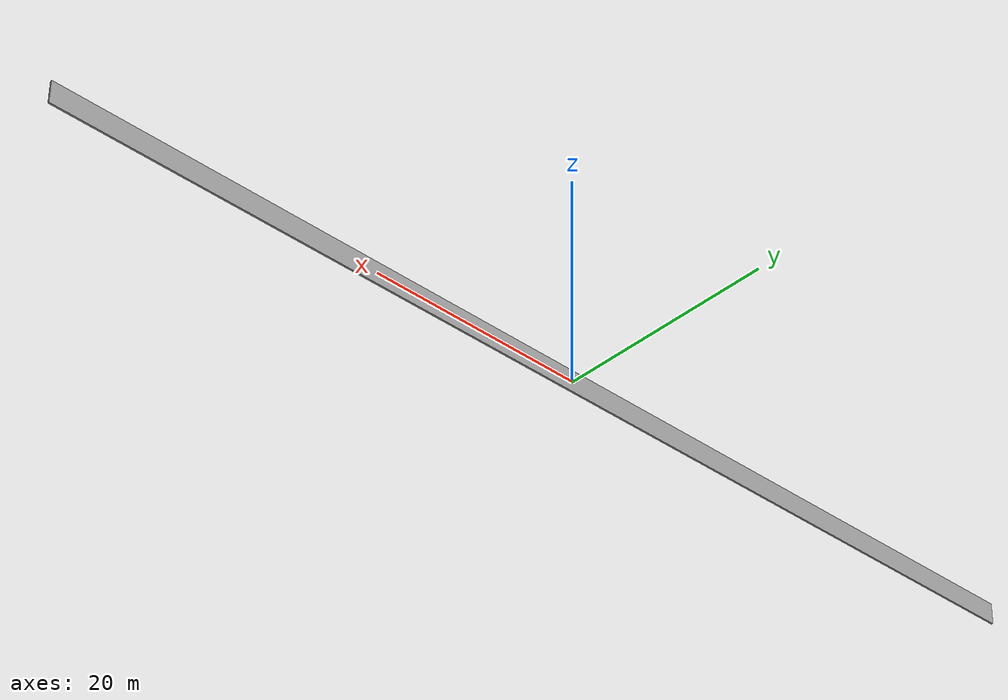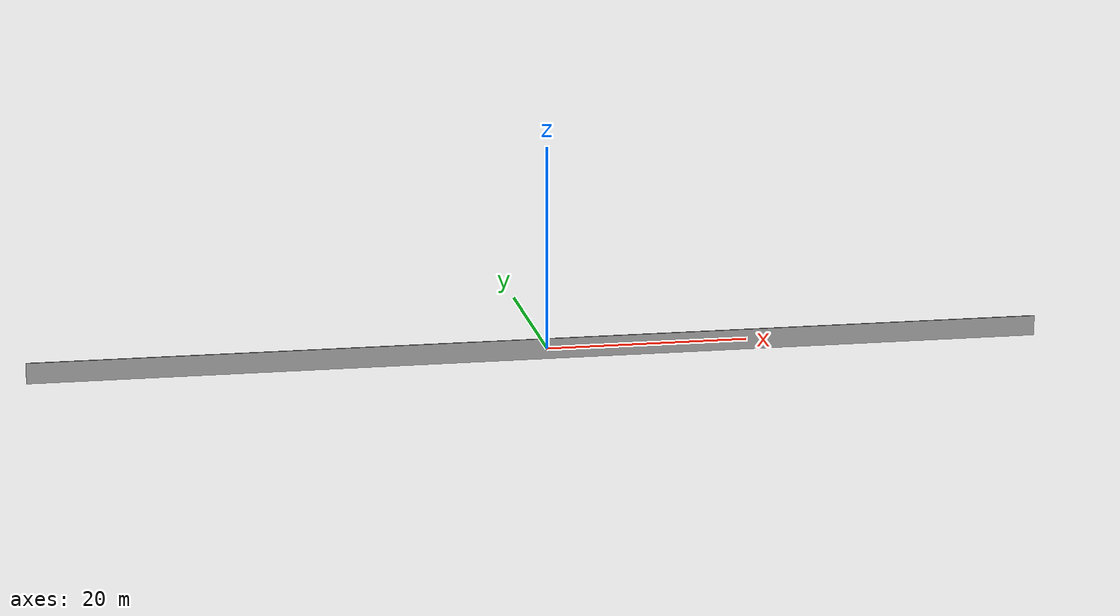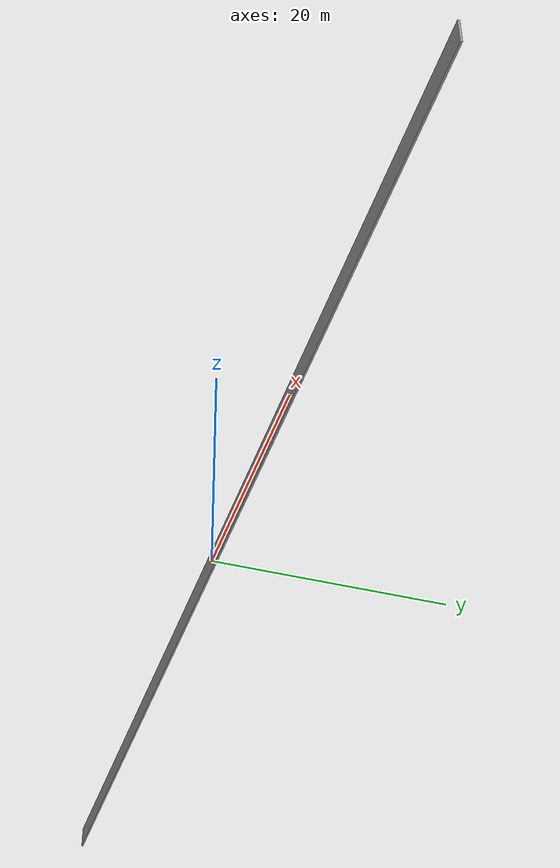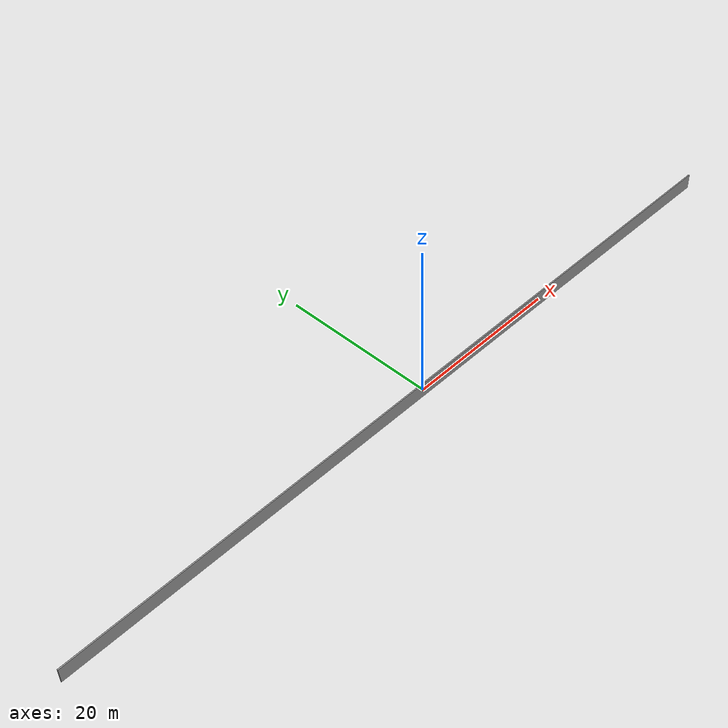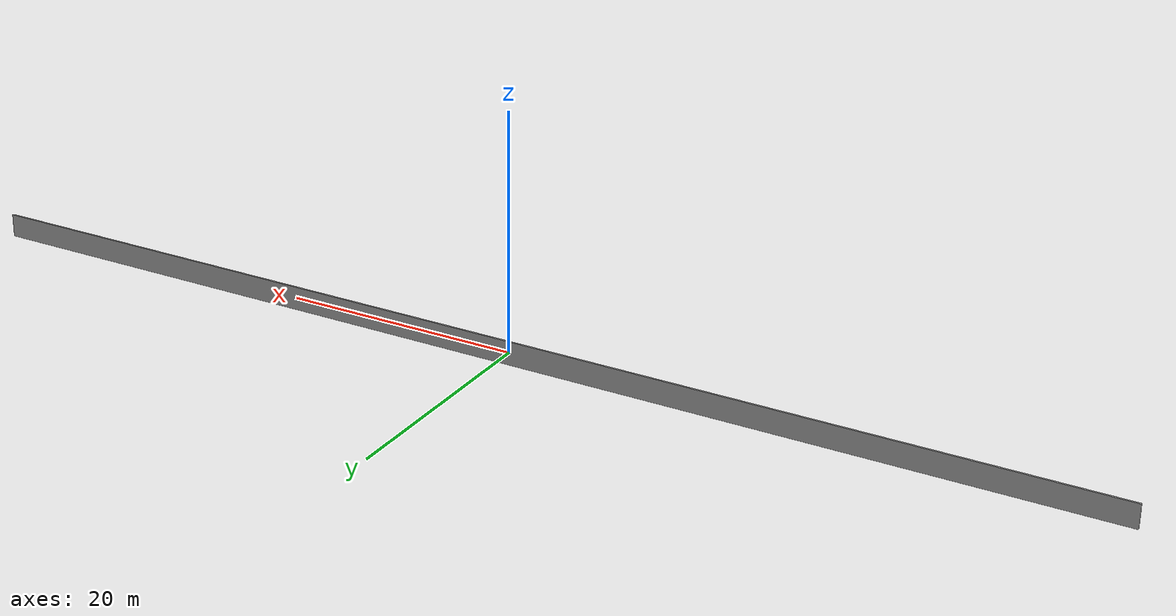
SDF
<?xml version='1.0'?>
<sdf version='1.6'>
  <model name="obs_wall">
    <pose frame=''>0 0 0 0 -0 0</pose>
    <static>true</static>
    <link name="wall_link">
        <inertial>
          <mass>100</mass>
        </inertial>
        <collision name="my_collision">
          <geometry>
            <box>
              <!-- 之前设置为30 0.15 2 -->
              <size>100 0.15 2</size>
            </box>
          </geometry>
        </collision>
        <visual name="my_visual">
          <geometry>
            <box>
              <!-- 之前设置为30 0.15 2 -->
              <size>100 0.15 2</size>
            </box>
          </geometry>
          <material>
            <script>
              <uri>file://media/materials/scripts/gazebo.material</uri>
              <name>Gazebo/Gray</name>
            </script>
            <ambient>1 1 1 1</ambient>
          </material>
        </visual>
    </link>
  </model>
</sdf>
